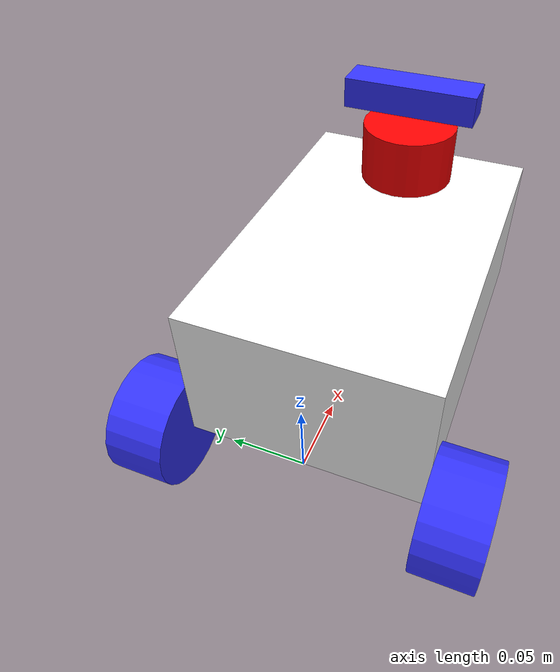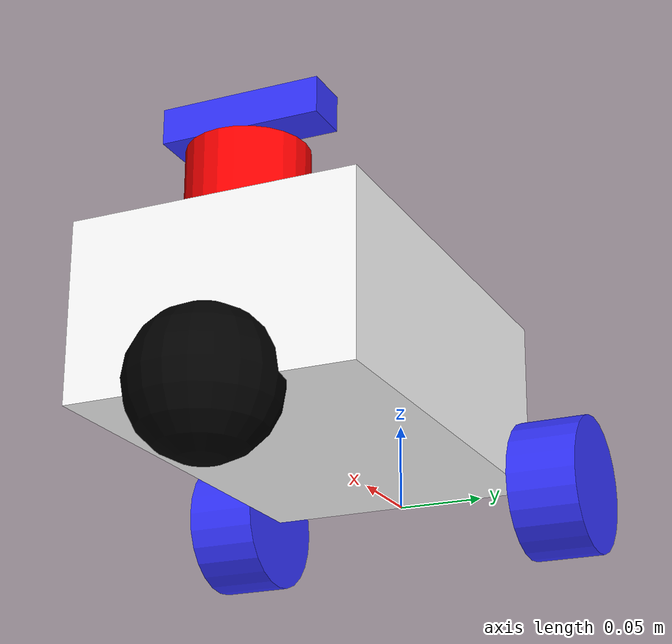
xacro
<?xml version="1.0"?>
<robot xmlns:xacro="http://www.ros.org/wiki/xacro"  name="robot">

    <xacro:arg name="use_ros2_control" default="true"/>

    <xacro:include filename="robot_core.xacro" />
    <xacro:include filename="depth_camera.xacro" />

    <xacro:if value="$(arg use_ros2_control)">
        <xacro:include filename="ros2_control.xacro" />
    </xacro:if>
    <xacro:unless value="$(arg use_ros2_control)">
        <xacro:include filename="gazebo_control.xacro" />
    </xacro:unless>

</robot>

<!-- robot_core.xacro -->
<robot xmlns:xacro="http://www.ros.org/wiki/xacro"  >

    <xacro:include filename="inertial_macros.xacro"/>

    <material name="white">
        <color rgba = "1 1 1 1" />
    </material>

    <material name="orange">
        <color rgba = "1 0.3 0.1 1" />
    </material>

    <material name="blue">
        <color rgba = "0.2 0.2 1 1" />
    </material>

    <material name="black">
        <color rgba = "0 0 0 1" />
    </material>

    <material name="red">
        <color rgba = "1 0 0 1" />
    </material>

    <link name="base_link">

    </link>

    <!-- BASE_FOOTPRINT LINK -->

    <joint name="base_footprint_joint" type="fixed">
        <parent link="base_link"/>
        <child link="base_footprint"/>
        <origin xyz="0 0 0" rpy="0 0 0"/>
    </joint>

    <link name="base_footprint">
    </link>

    <joint name="chassis_joint" type="fixed">
        <parent link="base_link"/>
        <child link="chassis"/>
        <origin xyz="0 0 0"/> <!--investigar para roboracecar-->
    </joint>

    <link name="chassis">
        <visual>
            <origin xyz="0.12 0 0.05"/>
            <geometry>
                <box size="0.24 0.16 0.10"/>
            </geometry>
            <material name="white"/>
        </visual>
        <collision>
            <origin xyz="0.12 0 0.05"/>
            <geometry>
                <box size="0.24 0.16 0.10"/>
            </geometry>
        </collision>
        <xacro:inertial_box mass="0.5" x="0.24" y="0.16" z="0.10">
            <origin xyz="0.12 0 0.05" rpy="0 0 0"/>
        </xacro:inertial_box>
    </link>

    <gazebo reference="chassis">
        <material>Gazebo/White</material>
    </gazebo>

    <!--RUEDAS TRASERAS-->

    <joint name="left_wheel_joint" type="continuous">
        <parent link="base_link"/>
        <child link="left_wheel"/>
        <origin xyz="0 0.10 0" rpy="-${pi/2} 0 0"/>
        <axis xyz="0 0 1"/>
    </joint>

    <link name="left_wheel">
        <visual>
            <geometry>
                <cylinder radius="0.04" length="0.04"/>
            </geometry>
            <material name="blue"/>
        </visual>
        <collision>
            <geometry>
                <sphere radius="0.04"/>
            </geometry>
        </collision>
        <xacro:inertial_cylinder mass="0.1" length="0.04" radius="0.04">
            <origin xyz="0 0 0" rpy="0 0 0"/>
        </xacro:inertial_cylinder>
    </link>

    <gazebo reference="left_wheel">
        <material>Gazebo/Blue</material>
    </gazebo>

    <joint name="right_wheel_joint" type="continuous">
        <parent link="base_link"/>
        <child link="right_wheel"/>
        <origin xyz="0 -0.10 0" rpy="-${pi/2} 0 0"/>
        <axis xyz="0 0 1"/>
    </joint>

    <link name="right_wheel">
        <visual>
            <geometry>
                <cylinder radius="0.04" length="0.04"/>
            </geometry>
            <material name="blue"/>
        </visual>
        <collision>
            <geometry>
                <sphere radius="0.04"/>
            </geometry>
        </collision>
        <xacro:inertial_cylinder mass="0.1" length="0.04" radius="0.04">
            <origin xyz="0 0 0" rpy="0 0 0"/>
        </xacro:inertial_cylinder>
    </link>

    <gazebo reference="right_wheel">
        <material>Gazebo/Blue</material>
    </gazebo>

    <!-- CASTER WHEEL LINK -->

    <joint name="caster_wheel_joint" type="fixed">
        <parent link="chassis"/>
        <child link="caster_wheel"/>
        <origin xyz="0.24 0 0"/>
    </joint>

    <link name="caster_wheel">
        <visual>
            <geometry>
                <sphere radius="0.04"/>
            </geometry>
            <material name="black"/>
        </visual>
        <collision>
            <geometry>
                <sphere radius="0.04"/>
            </geometry>
        </collision>
        <xacro:inertial_sphere mass="0.1" radius="0.04">
            <origin xyz="0.18 0 0" rpy="0 0 0"/>
        </xacro:inertial_sphere>
    </link>

    <gazebo reference="caster_wheel">
        <material>Gazebo/Black</material>
        <mu1 value="0.001"/>
        <mu2 value="0.001"/>
    </gazebo>

    <!--LIDAR-->
    <joint name="laser_joint" type="fixed">
        <parent link="chassis"/>
        <child link="laser_frame"/>
        <origin xyz="0.2 0 0.12" rpy="0 0 0"/>
    </joint>

    <link name="laser_frame">
        <visual>
            <geometry>
                <cylinder radius="0.033" length="0.04"/>
            </geometry>
            <material name="red"/>
        </visual>
        <collision>
            <geometry>
                <cylinder radius="0.033" length="0.04"/>
            </geometry>
        </collision>
        <xacro:inertial_cylinder mass="0.19" length="0.04" radius="0.033">
            <origin xyz="0 0 0" rpy="0 0 0"/>
        </xacro:inertial_cylinder>
    </link>

    <gazebo reference="laser_frame">
        <material>Gazebo/Red</material>

        <sensor name="laser" type="ray">
            <pose> 0 0 0 0 0 0 </pose>
            <visualize>true</visualize>
            <update_rate>10</update_rate>
            <ray>
                <scan>
                    <horizontal>
                        <samples>360</samples>
                        <min_angle>-3.14</min_angle>
                        <max_angle>3.14</max_angle>
                    </horizontal>
                </scan>
                <range>
                    <min>0.3</min>
                    <max>12</max>
                </range>
            </ray>
            <plugin name="laser_controller" filename="libgazebo_ros_ray_sensor.so">
                <ros>
                    <argument>~/out:=scan</argument>
                </ros>
                <output_type>sensor_msgs/LaserScan</output_type>
                <frame_name>laser_frame</frame_name>
            </plugin>
        </sensor>
    </gazebo>

</robot>

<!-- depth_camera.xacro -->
<robot xmlns:xacro="http://www.ros.org/wiki/xacro" >

    <joint name="camera_joint" type="fixed">
        <parent link="chassis"/>
        <child link="camera_link"/>
        <origin xyz="0.2 0 0.16" rpy="0 0 0"/>
    </joint>

    <link name="camera_link">
        <visual>
            <geometry>
                <box size="0.025 0.09 0.02"/>
            </geometry>
            <material name="blue"/>
        </visual>
    </link>

    <joint name="camera_optical_joint" type="fixed">
        <parent link="camera_link"/>
        <child link="camera_link_optical"/>
        <origin xyz="0 0 0" rpy="${-pi/2} 0 ${-pi/2}"/>
    </joint>

    <link name="camera_link_optical"></link>

    <gazebo reference="camera_link">
        <material>Gazebo/Blue</material>

        <sensor name="camera" type="depth">
            <pose> 0 0 0 0 0 0 </pose>
            <visualize>true</visualize>
            <update_rate>10</update_rate>
            <camera>
                <horizontal_fov>1.089</horizontal_fov>
                <image>
                    <format>B8G8R8</format>
                    <width>640</width>
                    <height>480</height>
                </image>
                <clip>
                    <near>0.05</near>
                    <far>8.0</far>
                </clip>
            </camera>
            <plugin name="camera_controller" filename="libgazebo_ros_camera.so">
                <frame_name>camera_link_optical</frame_name>
                <min_depth>0.1</min_depth>
                <max_depth>100.0</max_depth>
            </plugin>
        </sensor>
    </gazebo>

</robot>
